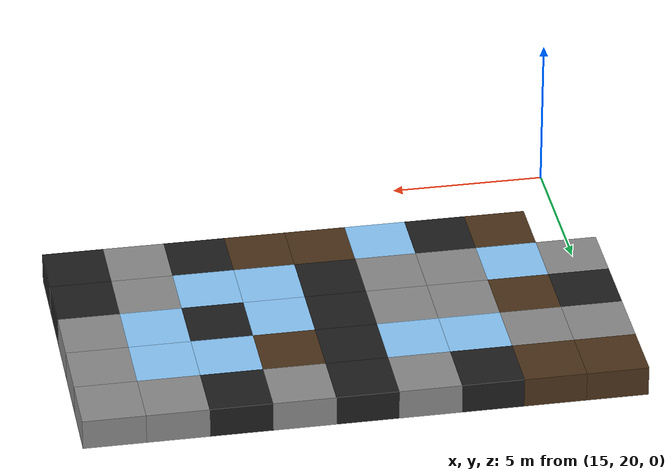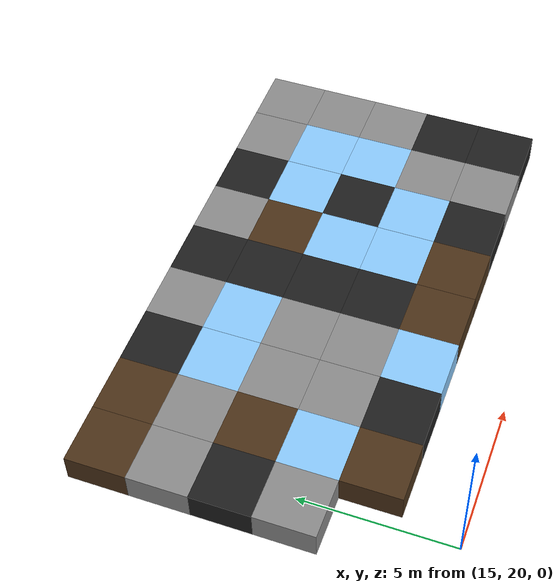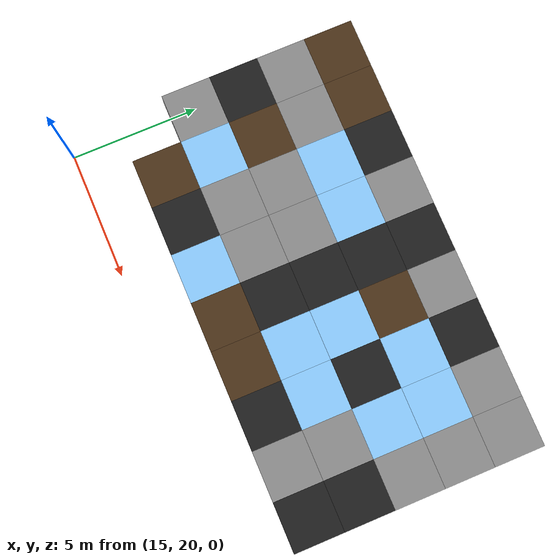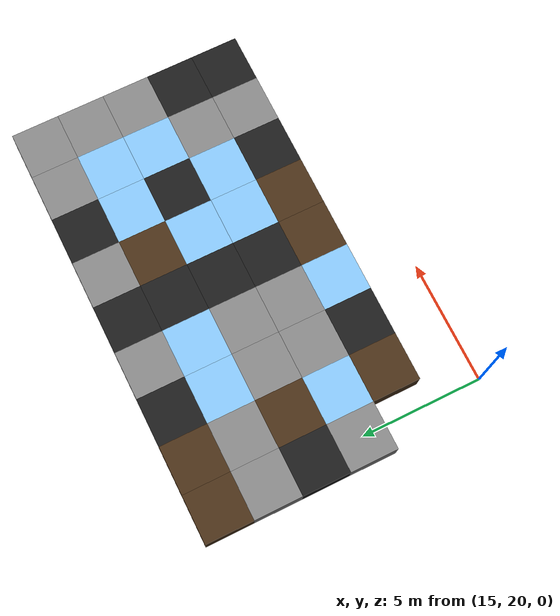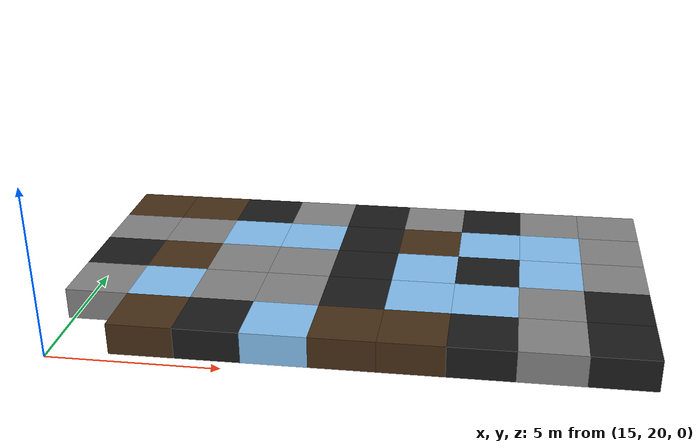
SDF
<sdf version="1.5">
 <world name="squares_example">
  <model name="tile_24_27">
   <static>true</static>
   <pose>17.000 23.000 -0.500 0 0 0</pose>
   <link name="link">
    <collision name="col">
     <geometry><box><size>2.0 2.0 1.0</size></box></geometry>
     <surface>
      <friction>
       <ode><mu>0.6</mu><mu2>0.4</mu2><fdir1>1 0 0</fdir1><slip1>0.08</slip1><slip2>0.08</slip2></ode>
       <torsional>
        <coefficient>0.03</coefficient>
        <use_patch_radius>false</use_patch_radius>
        <surface_radius>0.12</surface_radius>
        <ode><slip>0.0</slip></ode>
       </torsional>
      </friction>
      <bounce><restitution_coefficient>0.0</restitution_coefficient><threshold>0.1</threshold></bounce>
      <contact>
       <ode><kp>1000000.0</kp><kd>10000.0</kd><max_vel>0.01</max_vel><min_depth>0.0</min_depth></ode>
      </contact>
     </surface>
    </collision>
    <visual name="visual">
     <geometry><box><size>2.0 2.0 1.0</size></box></geometry>
     <material>
      <diffuse>0.30 0.20 0.10 1</diffuse>
      <ambient>0 0 0 0</ambient>
      <specular>0 0 0 1</specular>
      <emissive>0 0 0 1</emissive>
     </material>
    </visual>
   </link>
  </model>
  <model name="tile_25_27">
   <static>true</static>
   <pose>19.000 23.000 -0.500 0 0 0</pose>
   <link name="link">
    <collision name="col">
     <geometry><box><size>2.0 2.0 1.0</size></box></geometry>
     <surface>
      <friction>
       <ode><mu>0.4</mu><mu2>0.15</mu2><fdir1>1 0 0</fdir1><slip1>0.0</slip1><slip2>0.0</slip2></ode>
       <torsional>
        <coefficient>0.03</coefficient>
        <use_patch_radius>false</use_patch_radius>
        <surface_radius>0.12</surface_radius>
        <ode><slip>0.0</slip></ode>
       </torsional>
      </friction>
      <bounce><restitution_coefficient>0.0</restitution_coefficient><threshold>0.1</threshold></bounce>
      <contact>
       <ode><kp>1000000000.0</kp><kd>1000000.0</kd><max_vel>0.01</max_vel><min_depth>0.0</min_depth></ode>
      </contact>
     </surface>
    </collision>
    <visual name="visual">
     <geometry><box><size>2.0 2.0 1.0</size></box></geometry>
     <material>
      <diffuse>0.12 0.12 0.12 1</diffuse>
      <ambient>0 0 0 0</ambient>
      <specular>0 0 0 1</specular>
      <emissive>0 0 0 1</emissive>
     </material>
    </visual>
   </link>
  </model>
  <model name="tile_26_27">
   <static>true</static>
   <pose>21.000 23.000 -0.500 0 0 0</pose>
   <link name="link">
    <collision name="col">
     <geometry><box><size>2.0 2.0 1.0</size></box></geometry>
     <surface>
      <friction>
       <ode><mu>0.03</mu><mu2>0.02</mu2><fdir1>1 0 0</fdir1><slip1>0.03</slip1><slip2>0.03</slip2></ode>
       <torsional>
        <coefficient>0.005</coefficient>
        <use_patch_radius>false</use_patch_radius>
        <surface_radius>0.12</surface_radius>
        <ode><slip>0.01</slip></ode>
       </torsional>
      </friction>
      <bounce><restitution_coefficient>0.0</restitution_coefficient><threshold>0.1</threshold></bounce>
      <contact>
       <ode><kp>10000000.0</kp><kd>1000.0</kd><max_vel>0.01</max_vel><min_depth>0.0</min_depth></ode>
      </contact>
     </surface>
    </collision>
    <visual name="visual">
     <geometry><box><size>2.0 2.0 1.0</size></box></geometry>
     <material>
      <diffuse>0.55 0.80 1.00 1</diffuse>
      <ambient>0 0 0 0</ambient>
      <specular>0 0 0 1</specular>
      <emissive>0 0 0 1</emissive>
     </material>
    </visual>
   </link>
  </model>
  <model name="tile_27_27">
   <static>true</static>
   <pose>23.000 23.000 -0.500 0 0 0</pose>
   <link name="link">
    <collision name="col">
     <geometry><box><size>2.0 2.0 1.0</size></box></geometry>
     <surface>
      <friction>
       <ode><mu>0.6</mu><mu2>0.4</mu2><fdir1>1 0 0</fdir1><slip1>0.08</slip1><slip2>0.08</slip2></ode>
       <torsional>
        <coefficient>0.03</coefficient>
        <use_patch_radius>false</use_patch_radius>
        <surface_radius>0.12</surface_radius>
        <ode><slip>0.0</slip></ode>
       </torsional>
      </friction>
      <bounce><restitution_coefficient>0.0</restitution_coefficient><threshold>0.1</threshold></bounce>
      <contact>
       <ode><kp>1000000.0</kp><kd>10000.0</kd><max_vel>0.01</max_vel><min_depth>0.0</min_depth></ode>
      </contact>
     </surface>
    </collision>
    <visual name="visual">
     <geometry><box><size>2.0 2.0 1.0</size></box></geometry>
     <material>
      <diffuse>0.30 0.20 0.10 1</diffuse>
      <ambient>0 0 0 0</ambient>
      <specular>0 0 0 1</specular>
      <emissive>0 0 0 1</emissive>
     </material>
    </visual>
   </link>
  </model>
  <model name="tile_28_27">
   <static>true</static>
   <pose>25.000 23.000 -0.500 0 0 0</pose>
   <link name="link">
    <collision name="col">
     <geometry><box><size>2.0 2.0 1.0</size></box></geometry>
     <surface>
      <friction>
       <ode><mu>0.6</mu><mu2>0.4</mu2><fdir1>1 0 0</fdir1><slip1>0.08</slip1><slip2>0.08</slip2></ode>
       <torsional>
        <coefficient>0.03</coefficient>
        <use_patch_radius>false</use_patch_radius>
        <surface_radius>0.12</surface_radius>
        <ode><slip>0.0</slip></ode>
       </torsional>
      </friction>
      <bounce><restitution_coefficient>0.0</restitution_coefficient><threshold>0.1</threshold></bounce>
      <contact>
       <ode><kp>1000000.0</kp><kd>10000.0</kd><max_vel>0.01</max_vel><min_depth>0.0</min_depth></ode>
      </contact>
     </surface>
    </collision>
    <visual name="visual">
     <geometry><box><size>2.0 2.0 1.0</size></box></geometry>
     <material>
      <diffuse>0.30 0.20 0.10 1</diffuse>
      <ambient>0 0 0 0</ambient>
      <specular>0 0 0 1</specular>
      <emissive>0 0 0 1</emissive>
     </material>
    </visual>
   </link>
  </model>
  <model name="tile_29_27">
   <static>true</static>
   <pose>27.000 23.000 -0.500 0 0 0</pose>
   <link name="link">
    <collision name="col">
     <geometry><box><size>2.0 2.0 1.0</size></box></geometry>
     <surface>
      <friction>
       <ode><mu>0.4</mu><mu2>0.15</mu2><fdir1>1 0 0</fdir1><slip1>0.0</slip1><slip2>0.0</slip2></ode>
       <torsional>
        <coefficient>0.03</coefficient>
        <use_patch_radius>false</use_patch_radius>
        <surface_radius>0.12</surface_radius>
        <ode><slip>0.0</slip></ode>
       </torsional>
      </friction>
      <bounce><restitution_coefficient>0.0</restitution_coefficient><threshold>0.1</threshold></bounce>
      <contact>
       <ode><kp>1000000000.0</kp><kd>1000000.0</kd><max_vel>0.01</max_vel><min_depth>0.0</min_depth></ode>
      </contact>
     </surface>
    </collision>
    <visual name="visual">
     <geometry><box><size>2.0 2.0 1.0</size></box></geometry>
     <material>
      <diffuse>0.12 0.12 0.12 1</diffuse>
      <ambient>0 0 0 0</ambient>
      <specular>0 0 0 1</specular>
      <emissive>0 0 0 1</emissive>
     </material>
    </visual>
   </link>
  </model>
  <model name="tile_30_27">
   <static>true</static>
   <pose>29.000 23.000 -0.500 0 0 0</pose>
   <link name="link">
    <collision name="col">
     <geometry><box><size>2.0 2.0 1.0</size></box></geometry>
     <surface>
      <friction>
       <ode><mu>0.8</mu><mu2>0.3</mu2><fdir1>1 0 0</fdir1><slip1>0.0</slip1><slip2>0.0</slip2></ode>
       <torsional>
        <coefficient>0.03</coefficient>
        <use_patch_radius>false</use_patch_radius>
        <surface_radius>0.12</surface_radius>
        <ode><slip>0.0</slip></ode>
       </torsional>
      </friction>
      <bounce><restitution_coefficient>0.0</restitution_coefficient><threshold>0.1</threshold></bounce>
      <contact>
       <ode><kp>10000000000.0</kp><kd>10000000.0</kd><max_vel>0.01</max_vel><min_depth>0.0</min_depth></ode>
      </contact>
     </surface>
    </collision>
    <visual name="visual">
     <geometry><box><size>2.0 2.0 1.0</size></box></geometry>
     <material>
      <diffuse>0.55 0.55 0.55 1</diffuse>
      <ambient>0 0 0 0</ambient>
      <specular>0 0 0 1</specular>
      <emissive>0 0 0 1</emissive>
     </material>
    </visual>
   </link>
  </model>
  <model name="tile_31_27">
   <static>true</static>
   <pose>31.000 23.000 -0.500 0 0 0</pose>
   <link name="link">
    <collision name="col">
     <geometry><box><size>2.0 2.0 1.0</size></box></geometry>
     <surface>
      <friction>
       <ode><mu>0.4</mu><mu2>0.15</mu2><fdir1>1 0 0</fdir1><slip1>0.0</slip1><slip2>0.0</slip2></ode>
       <torsional>
        <coefficient>0.03</coefficient>
        <use_patch_radius>false</use_patch_radius>
        <surface_radius>0.12</surface_radius>
        <ode><slip>0.0</slip></ode>
       </torsional>
      </friction>
      <bounce><restitution_coefficient>0.0</restitution_coefficient><threshold>0.1</threshold></bounce>
      <contact>
       <ode><kp>1000000000.0</kp><kd>1000000.0</kd><max_vel>0.01</max_vel><min_depth>0.0</min_depth></ode>
      </contact>
     </surface>
    </collision>
    <visual name="visual">
     <geometry><box><size>2.0 2.0 1.0</size></box></geometry>
     <material>
      <diffuse>0.12 0.12 0.12 1</diffuse>
      <ambient>0 0 0 0</ambient>
      <specular>0 0 0 1</specular>
      <emissive>0 0 0 1</emissive>
     </material>
    </visual>
   </link>
  </model>
  <model name="tile_23_28">
   <static>true</static>
   <pose>15.000 25.000 -0.500 0 0 0</pose>
   <link name="link">
    <collision name="col">
     <geometry><box><size>2.0 2.0 1.0</size></box></geometry>
     <surface>
      <friction>
       <ode><mu>0.8</mu><mu2>0.3</mu2><fdir1>1 0 0</fdir1><slip1>0.0</slip1><slip2>0.0</slip2></ode>
       <torsional>
        <coefficient>0.03</coefficient>
        <use_patch_radius>false</use_patch_radius>
        <surface_radius>0.12</surface_radius>
        <ode><slip>0.0</slip></ode>
       </torsional>
      </friction>
      <bounce><restitution_coefficient>0.0</restitution_coefficient><threshold>0.1</threshold></bounce>
      <contact>
       <ode><kp>10000000000.0</kp><kd>10000000.0</kd><max_vel>0.01</max_vel><min_depth>0.0</min_depth></ode>
      </contact>
     </surface>
    </collision>
    <visual name="visual">
     <geometry><box><size>2.0 2.0 1.0</size></box></geometry>
     <material>
      <diffuse>0.55 0.55 0.55 1</diffuse>
      <ambient>0 0 0 0</ambient>
      <specular>0 0 0 1</specular>
      <emissive>0 0 0 1</emissive>
     </material>
    </visual>
   </link>
  </model>
  <model name="tile_24_28">
   <static>true</static>
   <pose>17.000 25.000 -0.500 0 0 0</pose>
   <link name="link">
    <collision name="col">
     <geometry><box><size>2.0 2.0 1.0</size></box></geometry>
     <surface>
      <friction>
       <ode><mu>0.03</mu><mu2>0.02</mu2><fdir1>1 0 0</fdir1><slip1>0.03</slip1><slip2>0.03</slip2></ode>
       <torsional>
        <coefficient>0.005</coefficient>
        <use_patch_radius>false</use_patch_radius>
        <surface_radius>0.12</surface_radius>
        <ode><slip>0.01</slip></ode>
       </torsional>
      </friction>
      <bounce><restitution_coefficient>0.0</restitution_coefficient><threshold>0.1</threshold></bounce>
      <contact>
       <ode><kp>10000000.0</kp><kd>1000.0</kd><max_vel>0.01</max_vel><min_depth>0.0</min_depth></ode>
      </contact>
     </surface>
    </collision>
    <visual name="visual">
     <geometry><box><size>2.0 2.0 1.0</size></box></geometry>
     <material>
      <diffuse>0.55 0.80 1.00 1</diffuse>
      <ambient>0 0 0 0</ambient>
      <specular>0 0 0 1</specular>
      <emissive>0 0 0 1</emissive>
     </material>
    </visual>
   </link>
  </model>
  <model name="tile_25_28">
   <static>true</static>
   <pose>19.000 25.000 -0.500 0 0 0</pose>
   <link name="link">
    <collision name="col">
     <geometry><box><size>2.0 2.0 1.0</size></box></geometry>
     <surface>
      <friction>
       <ode><mu>0.8</mu><mu2>0.3</mu2><fdir1>1 0 0</fdir1><slip1>0.0</slip1><slip2>0.0</slip2></ode>
       <torsional>
        <coefficient>0.03</coefficient>
        <use_patch_radius>false</use_patch_radius>
        <surface_radius>0.12</surface_radius>
        <ode><slip>0.0</slip></ode>
       </torsional>
      </friction>
      <bounce><restitution_coefficient>0.0</restitution_coefficient><threshold>0.1</threshold></bounce>
      <contact>
       <ode><kp>10000000000.0</kp><kd>10000000.0</kd><max_vel>0.01</max_vel><min_depth>0.0</min_depth></ode>
      </contact>
     </surface>
    </collision>
    <visual name="visual">
     <geometry><box><size>2.0 2.0 1.0</size></box></geometry>
     <material>
      <diffuse>0.55 0.55 0.55 1</diffuse>
      <ambient>0 0 0 0</ambient>
      <specular>0 0 0 1</specular>
      <emissive>0 0 0 1</emissive>
     </material>
    </visual>
   </link>
  </model>
  <model name="tile_26_28">
   <static>true</static>
   <pose>21.000 25.000 -0.500 0 0 0</pose>
   <link name="link">
    <collision name="col">
     <geometry><box><size>2.0 2.0 1.0</size></box></geometry>
     <surface>
      <friction>
       <ode><mu>0.8</mu><mu2>0.3</mu2><fdir1>1 0 0</fdir1><slip1>0.0</slip1><slip2>0.0</slip2></ode>
       <torsional>
        <coefficient>0.03</coefficient>
        <use_patch_radius>false</use_patch_radius>
        <surface_radius>0.12</surface_radius>
        <ode><slip>0.0</slip></ode>
       </torsional>
      </friction>
      <bounce><restitution_coefficient>0.0</restitution_coefficient><threshold>0.1</threshold></bounce>
      <contact>
       <ode><kp>10000000000.0</kp><kd>10000000.0</kd><max_vel>0.01</max_vel><min_depth>0.0</min_depth></ode>
      </contact>
     </surface>
    </collision>
    <visual name="visual">
     <geometry><box><size>2.0 2.0 1.0</size></box></geometry>
     <material>
      <diffuse>0.55 0.55 0.55 1</diffuse>
      <ambient>0 0 0 0</ambient>
      <specular>0 0 0 1</specular>
      <emissive>0 0 0 1</emissive>
     </material>
    </visual>
   </link>
  </model>
  <model name="tile_27_28">
   <static>true</static>
   <pose>23.000 25.000 -0.500 0 0 0</pose>
   <link name="link">
    <collision name="col">
     <geometry><box><size>2.0 2.0 1.0</size></box></geometry>
     <surface>
      <friction>
       <ode><mu>0.4</mu><mu2>0.15</mu2><fdir1>1 0 0</fdir1><slip1>0.0</slip1><slip2>0.0</slip2></ode>
       <torsional>
        <coefficient>0.03</coefficient>
        <use_patch_radius>false</use_patch_radius>
        <surface_radius>0.12</surface_radius>
        <ode><slip>0.0</slip></ode>
       </torsional>
      </friction>
      <bounce><restitution_coefficient>0.0</restitution_coefficient><threshold>0.1</threshold></bounce>
      <contact>
       <ode><kp>1000000000.0</kp><kd>1000000.0</kd><max_vel>0.01</max_vel><min_depth>0.0</min_depth></ode>
      </contact>
     </surface>
    </collision>
    <visual name="visual">
     <geometry><box><size>2.0 2.0 1.0</size></box></geometry>
     <material>
      <diffuse>0.12 0.12 0.12 1</diffuse>
      <ambient>0 0 0 0</ambient>
      <specular>0 0 0 1</specular>
      <emissive>0 0 0 1</emissive>
     </material>
    </visual>
   </link>
  </model>
  <model name="tile_28_28">
   <static>true</static>
   <pose>25.000 25.000 -0.500 0 0 0</pose>
   <link name="link">
    <collision name="col">
     <geometry><box><size>2.0 2.0 1.0</size></box></geometry>
     <surface>
      <friction>
       <ode><mu>0.03</mu><mu2>0.02</mu2><fdir1>1 0 0</fdir1><slip1>0.03</slip1><slip2>0.03</slip2></ode>
       <torsional>
        <coefficient>0.005</coefficient>
        <use_patch_radius>false</use_patch_radius>
        <surface_radius>0.12</surface_radius>
        <ode><slip>0.01</slip></ode>
       </torsional>
      </friction>
      <bounce><restitution_coefficient>0.0</restitution_coefficient><threshold>0.1</threshold></bounce>
      <contact>
       <ode><kp>10000000.0</kp><kd>1000.0</kd><max_vel>0.01</max_vel><min_depth>0.0</min_depth></ode>
      </contact>
     </surface>
    </collision>
    <visual name="visual">
     <geometry><box><size>2.0 2.0 1.0</size></box></geometry>
     <material>
      <diffuse>0.55 0.80 1.00 1</diffuse>
      <ambient>0 0 0 0</ambient>
      <specular>0 0 0 1</specular>
      <emissive>0 0 0 1</emissive>
     </material>
    </visual>
   </link>
  </model>
  <model name="tile_29_28">
   <static>true</static>
   <pose>27.000 25.000 -0.500 0 0 0</pose>
   <link name="link">
    <collision name="col">
     <geometry><box><size>2.0 2.0 1.0</size></box></geometry>
     <surface>
      <friction>
       <ode><mu>0.03</mu><mu2>0.02</mu2><fdir1>1 0 0</fdir1><slip1>0.03</slip1><slip2>0.03</slip2></ode>
       <torsional>
        <coefficient>0.005</coefficient>
        <use_patch_radius>false</use_patch_radius>
        <surface_radius>0.12</surface_radius>
        <ode><slip>0.01</slip></ode>
       </torsional>
      </friction>
      <bounce><restitution_coefficient>0.0</restitution_coefficient><threshold>0.1</threshold></bounce>
      <contact>
       <ode><kp>10000000.0</kp><kd>1000.0</kd><max_vel>0.01</max_vel><min_depth>0.0</min_depth></ode>
      </contact>
     </surface>
    </collision>
    <visual name="visual">
     <geometry><box><size>2.0 2.0 1.0</size></box></geometry>
     <material>
      <diffuse>0.55 0.80 1.00 1</diffuse>
      <ambient>0 0 0 0</ambient>
      <specular>0 0 0 1</specular>
      <emissive>0 0 0 1</emissive>
     </material>
    </visual>
   </link>
  </model>
  <model name="tile_30_28">
   <static>true</static>
   <pose>29.000 25.000 -0.500 0 0 0</pose>
   <link name="link">
    <collision name="col">
     <geometry><box><size>2.0 2.0 1.0</size></box></geometry>
     <surface>
      <friction>
       <ode><mu>0.8</mu><mu2>0.3</mu2><fdir1>1 0 0</fdir1><slip1>0.0</slip1><slip2>0.0</slip2></ode>
       <torsional>
        <coefficient>0.03</coefficient>
        <use_patch_radius>false</use_patch_radius>
        <surface_radius>0.12</surface_radius>
        <ode><slip>0.0</slip></ode>
       </torsional>
      </friction>
      <bounce><restitution_coefficient>0.0</restitution_coefficient><threshold>0.1</threshold></bounce>
      <contact>
       <ode><kp>10000000000.0</kp><kd>10000000.0</kd><max_vel>0.01</max_vel><min_depth>0.0</min_depth></ode>
      </contact>
     </surface>
    </collision>
    <visual name="visual">
     <geometry><box><size>2.0 2.0 1.0</size></box></geometry>
     <material>
      <diffuse>0.55 0.55 0.55 1</diffuse>
      <ambient>0 0 0 0</ambient>
      <specular>0 0 0 1</specular>
      <emissive>0 0 0 1</emissive>
     </material>
    </visual>
   </link>
  </model>
  <model name="tile_31_28">
   <static>true</static>
   <pose>31.000 25.000 -0.500 0 0 0</pose>
   <link name="link">
    <collision name="col">
     <geometry><box><size>2.0 2.0 1.0</size></box></geometry>
     <surface>
      <friction>
       <ode><mu>0.4</mu><mu2>0.15</mu2><fdir1>1 0 0</fdir1><slip1>0.0</slip1><slip2>0.0</slip2></ode>
       <torsional>
        <coefficient>0.03</coefficient>
        <use_patch_radius>false</use_patch_radius>
        <surface_radius>0.12</surface_radius>
        <ode><slip>0.0</slip></ode>
       </torsional>
      </friction>
      <bounce><restitution_coefficient>0.0</restitution_coefficient><threshold>0.1</threshold></bounce>
      <contact>
       <ode><kp>1000000000.0</kp><kd>1000000.0</kd><max_vel>0.01</max_vel><min_depth>0.0</min_depth></ode>
      </contact>
     </surface>
    </collision>
    <visual name="visual">
     <geometry><box><size>2.0 2.0 1.0</size></box></geometry>
     <material>
      <diffuse>0.12 0.12 0.12 1</diffuse>
      <ambient>0 0 0 0</ambient>
      <specular>0 0 0 1</specular>
      <emissive>0 0 0 1</emissive>
     </material>
    </visual>
   </link>
  </model>
  <model name="tile_23_29">
   <static>true</static>
   <pose>15.000 27.000 -0.500 0 0 0</pose>
   <link name="link">
    <collision name="col">
     <geometry><box><size>2.0 2.0 1.0</size></box></geometry>
     <surface>
      <friction>
       <ode><mu>0.4</mu><mu2>0.15</mu2><fdir1>1 0 0</fdir1><slip1>0.0</slip1><slip2>0.0</slip2></ode>
       <torsional>
        <coefficient>0.03</coefficient>
        <use_patch_radius>false</use_patch_radius>
        <surface_radius>0.12</surface_radius>
        <ode><slip>0.0</slip></ode>
       </torsional>
      </friction>
      <bounce><restitution_coefficient>0.0</restitution_coefficient><threshold>0.1</threshold></bounce>
      <contact>
       <ode><kp>1000000000.0</kp><kd>1000000.0</kd><max_vel>0.01</max_vel><min_depth>0.0</min_depth></ode>
      </contact>
     </surface>
    </collision>
    <visual name="visual">
     <geometry><box><size>2.0 2.0 1.0</size></box></geometry>
     <material>
      <diffuse>0.12 0.12 0.12 1</diffuse>
      <ambient>0 0 0 0</ambient>
      <specular>0 0 0 1</specular>
      <emissive>0 0 0 1</emissive>
     </material>
    </visual>
   </link>
  </model>
  <model name="tile_24_29">
   <static>true</static>
   <pose>17.000 27.000 -0.500 0 0 0</pose>
   <link name="link">
    <collision name="col">
     <geometry><box><size>2.0 2.0 1.0</size></box></geometry>
     <surface>
      <friction>
       <ode><mu>0.6</mu><mu2>0.4</mu2><fdir1>1 0 0</fdir1><slip1>0.08</slip1><slip2>0.08</slip2></ode>
       <torsional>
        <coefficient>0.03</coefficient>
        <use_patch_radius>false</use_patch_radius>
        <surface_radius>0.12</surface_radius>
        <ode><slip>0.0</slip></ode>
       </torsional>
      </friction>
      <bounce><restitution_coefficient>0.0</restitution_coefficient><threshold>0.1</threshold></bounce>
      <contact>
       <ode><kp>1000000.0</kp><kd>10000.0</kd><max_vel>0.01</max_vel><min_depth>0.0</min_depth></ode>
      </contact>
     </surface>
    </collision>
    <visual name="visual">
     <geometry><box><size>2.0 2.0 1.0</size></box></geometry>
     <material>
      <diffuse>0.30 0.20 0.10 1</diffuse>
      <ambient>0 0 0 0</ambient>
      <specular>0 0 0 1</specular>
      <emissive>0 0 0 1</emissive>
     </material>
    </visual>
   </link>
  </model>
  <model name="tile_25_29">
   <static>true</static>
   <pose>19.000 27.000 -0.500 0 0 0</pose>
   <link name="link">
    <collision name="col">
     <geometry><box><size>2.0 2.0 1.0</size></box></geometry>
     <surface>
      <friction>
       <ode><mu>0.8</mu><mu2>0.3</mu2><fdir1>1 0 0</fdir1><slip1>0.0</slip1><slip2>0.0</slip2></ode>
       <torsional>
        <coefficient>0.03</coefficient>
        <use_patch_radius>false</use_patch_radius>
        <surface_radius>0.12</surface_radius>
        <ode><slip>0.0</slip></ode>
       </torsional>
      </friction>
      <bounce><restitution_coefficient>0.0</restitution_coefficient><threshold>0.1</threshold></bounce>
      <contact>
       <ode><kp>10000000000.0</kp><kd>10000000.0</kd><max_vel>0.01</max_vel><min_depth>0.0</min_depth></ode>
      </contact>
     </surface>
    </collision>
    <visual name="visual">
     <geometry><box><size>2.0 2.0 1.0</size></box></geometry>
     <material>
      <diffuse>0.55 0.55 0.55 1</diffuse>
      <ambient>0 0 0 0</ambient>
      <specular>0 0 0 1</specular>
      <emissive>0 0 0 1</emissive>
     </material>
    </visual>
   </link>
  </model>
  <model name="tile_26_29">
   <static>true</static>
   <pose>21.000 27.000 -0.500 0 0 0</pose>
   <link name="link">
    <collision name="col">
     <geometry><box><size>2.0 2.0 1.0</size></box></geometry>
     <surface>
      <friction>
       <ode><mu>0.8</mu><mu2>0.3</mu2><fdir1>1 0 0</fdir1><slip1>0.0</slip1><slip2>0.0</slip2></ode>
       <torsional>
        <coefficient>0.03</coefficient>
        <use_patch_radius>false</use_patch_radius>
        <surface_radius>0.12</surface_radius>
        <ode><slip>0.0</slip></ode>
       </torsional>
      </friction>
      <bounce><restitution_coefficient>0.0</restitution_coefficient><threshold>0.1</threshold></bounce>
      <contact>
       <ode><kp>10000000000.0</kp><kd>10000000.0</kd><max_vel>0.01</max_vel><min_depth>0.0</min_depth></ode>
      </contact>
     </surface>
    </collision>
    <visual name="visual">
     <geometry><box><size>2.0 2.0 1.0</size></box></geometry>
     <material>
      <diffuse>0.55 0.55 0.55 1</diffuse>
      <ambient>0 0 0 0</ambient>
      <specular>0 0 0 1</specular>
      <emissive>0 0 0 1</emissive>
     </material>
    </visual>
   </link>
  </model>
  <model name="tile_27_29">
   <static>true</static>
   <pose>23.000 27.000 -0.500 0 0 0</pose>
   <link name="link">
    <collision name="col">
     <geometry><box><size>2.0 2.0 1.0</size></box></geometry>
     <surface>
      <friction>
       <ode><mu>0.4</mu><mu2>0.15</mu2><fdir1>1 0 0</fdir1><slip1>0.0</slip1><slip2>0.0</slip2></ode>
       <torsional>
        <coefficient>0.03</coefficient>
        <use_patch_radius>false</use_patch_radius>
        <surface_radius>0.12</surface_radius>
        <ode><slip>0.0</slip></ode>
       </torsional>
      </friction>
      <bounce><restitution_coefficient>0.0</restitution_coefficient><threshold>0.1</threshold></bounce>
      <contact>
       <ode><kp>1000000000.0</kp><kd>1000000.0</kd><max_vel>0.01</max_vel><min_depth>0.0</min_depth></ode>
      </contact>
     </surface>
    </collision>
    <visual name="visual">
     <geometry><box><size>2.0 2.0 1.0</size></box></geometry>
     <material>
      <diffuse>0.12 0.12 0.12 1</diffuse>
      <ambient>0 0 0 0</ambient>
      <specular>0 0 0 1</specular>
      <emissive>0 0 0 1</emissive>
     </material>
    </visual>
   </link>
  </model>
  <model name="tile_28_29">
   <static>true</static>
   <pose>25.000 27.000 -0.500 0 0 0</pose>
   <link name="link">
    <collision name="col">
     <geometry><box><size>2.0 2.0 1.0</size></box></geometry>
     <surface>
      <friction>
       <ode><mu>0.03</mu><mu2>0.02</mu2><fdir1>1 0 0</fdir1><slip1>0.03</slip1><slip2>0.03</slip2></ode>
       <torsional>
        <coefficient>0.005</coefficient>
        <use_patch_radius>false</use_patch_radius>
        <surface_radius>0.12</surface_radius>
        <ode><slip>0.01</slip></ode>
       </torsional>
      </friction>
      <bounce><restitution_coefficient>0.0</restitution_coefficient><threshold>0.1</threshold></bounce>
      <contact>
       <ode><kp>10000000.0</kp><kd>1000.0</kd><max_vel>0.01</max_vel><min_depth>0.0</min_depth></ode>
      </contact>
     </surface>
    </collision>
    <visual name="visual">
     <geometry><box><size>2.0 2.0 1.0</size></box></geometry>
     <material>
      <diffuse>0.55 0.80 1.00 1</diffuse>
      <ambient>0 0 0 0</ambient>
      <specular>0 0 0 1</specular>
      <emissive>0 0 0 1</emissive>
     </material>
    </visual>
   </link>
  </model>
  <model name="tile_29_29">
   <static>true</static>
   <pose>27.000 27.000 -0.500 0 0 0</pose>
   <link name="link">
    <collision name="col">
     <geometry><box><size>2.0 2.0 1.0</size></box></geometry>
     <surface>
      <friction>
       <ode><mu>0.4</mu><mu2>0.15</mu2><fdir1>1 0 0</fdir1><slip1>0.0</slip1><slip2>0.0</slip2></ode>
       <torsional>
        <coefficient>0.03</coefficient>
        <use_patch_radius>false</use_patch_radius>
        <surface_radius>0.12</surface_radius>
        <ode><slip>0.0</slip></ode>
       </torsional>
      </friction>
      <bounce><restitution_coefficient>0.0</restitution_coefficient><threshold>0.1</threshold></bounce>
      <contact>
       <ode><kp>1000000000.0</kp><kd>1000000.0</kd><max_vel>0.01</max_vel><min_depth>0.0</min_depth></ode>
      </contact>
     </surface>
    </collision>
    <visual name="visual">
     <geometry><box><size>2.0 2.0 1.0</size></box></geometry>
     <material>
      <diffuse>0.12 0.12 0.12 1</diffuse>
      <ambient>0 0 0 0</ambient>
      <specular>0 0 0 1</specular>
      <emissive>0 0 0 1</emissive>
     </material>
    </visual>
   </link>
  </model>
  <model name="tile_30_29">
   <static>true</static>
   <pose>29.000 27.000 -0.500 0 0 0</pose>
   <link name="link">
    <collision name="col">
     <geometry><box><size>2.0 2.0 1.0</size></box></geometry>
     <surface>
      <friction>
       <ode><mu>0.03</mu><mu2>0.02</mu2><fdir1>1 0 0</fdir1><slip1>0.03</slip1><slip2>0.03</slip2></ode>
       <torsional>
        <coefficient>0.005</coefficient>
        <use_patch_radius>false</use_patch_radius>
        <surface_radius>0.12</surface_radius>
        <ode><slip>0.01</slip></ode>
       </torsional>
      </friction>
      <bounce><restitution_coefficient>0.0</restitution_coefficient><threshold>0.1</threshold></bounce>
      <contact>
       <ode><kp>10000000.0</kp><kd>1000.0</kd><max_vel>0.01</max_vel><min_depth>0.0</min_depth></ode>
      </contact>
     </surface>
    </collision>
    <visual name="visual">
     <geometry><box><size>2.0 2.0 1.0</size></box></geometry>
     <material>
      <diffuse>0.55 0.80 1.00 1</diffuse>
      <ambient>0 0 0 0</ambient>
      <specular>0 0 0 1</specular>
      <emissive>0 0 0 1</emissive>
     </material>
    </visual>
   </link>
  </model>
  <model name="tile_31_29">
   <static>true</static>
   <pose>31.000 27.000 -0.500 0 0 0</pose>
   <link name="link">
    <collision name="col">
     <geometry><box><size>2.0 2.0 1.0</size></box></geometry>
     <surface>
      <friction>
       <ode><mu>0.8</mu><mu2>0.3</mu2><fdir1>1 0 0</fdir1><slip1>0.0</slip1><slip2>0.0</slip2></ode>
       <torsional>
        <coefficient>0.03</coefficient>
        <use_patch_radius>false</use_patch_radius>
        <surface_radius>0.12</surface_radius>
        <ode><slip>0.0</slip></ode>
       </torsional>
      </friction>
      <bounce><restitution_coefficient>0.0</restitution_coefficient><threshold>0.1</threshold></bounce>
      <contact>
       <ode><kp>10000000000.0</kp><kd>10000000.0</kd><max_vel>0.01</max_vel><min_depth>0.0</min_depth></ode>
      </contact>
     </surface>
    </collision>
    <visual name="visual">
     <geometry><box><size>2.0 2.0 1.0</size></box></geometry>
     <material>
      <diffuse>0.55 0.55 0.55 1</diffuse>
      <ambient>0 0 0 0</ambient>
      <specular>0 0 0 1</specular>
      <emissive>0 0 0 1</emissive>
     </material>
    </visual>
   </link>
  </model>
  <model name="tile_23_30">
   <static>true</static>
   <pose>15.000 29.000 -0.500 0 0 0</pose>
   <link name="link">
    <collision name="col">
     <geometry><box><size>2.0 2.0 1.0</size></box></geometry>
     <surface>
      <friction>
       <ode><mu>0.8</mu><mu2>0.3</mu2><fdir1>1 0 0</fdir1><slip1>0.0</slip1><slip2>0.0</slip2></ode>
       <torsional>
        <coefficient>0.03</coefficient>
        <use_patch_radius>false</use_patch_radius>
        <surface_radius>0.12</surface_radius>
        <ode><slip>0.0</slip></ode>
       </torsional>
      </friction>
      <bounce><restitution_coefficient>0.0</restitution_coefficient><threshold>0.1</threshold></bounce>
      <contact>
       <ode><kp>10000000000.0</kp><kd>10000000.0</kd><max_vel>0.01</max_vel><min_depth>0.0</min_depth></ode>
      </contact>
     </surface>
    </collision>
    <visual name="visual">
     <geometry><box><size>2.0 2.0 1.0</size></box></geometry>
     <material>
      <diffuse>0.55 0.55 0.55 1</diffuse>
      <ambient>0 0 0 0</ambient>
      <specular>0 0 0 1</specular>
      <emissive>0 0 0 1</emissive>
     </material>
    </visual>
   </link>
  </model>
  <model name="tile_24_30">
   <static>true</static>
   <pose>17.000 29.000 -0.500 0 0 0</pose>
   <link name="link">
    <collision name="col">
     <geometry><box><size>2.0 2.0 1.0</size></box></geometry>
     <surface>
      <friction>
       <ode><mu>0.8</mu><mu2>0.3</mu2><fdir1>1 0 0</fdir1><slip1>0.0</slip1><slip2>0.0</slip2></ode>
       <torsional>
        <coefficient>0.03</coefficient>
        <use_patch_radius>false</use_patch_radius>
        <surface_radius>0.12</surface_radius>
        <ode><slip>0.0</slip></ode>
       </torsional>
      </friction>
      <bounce><restitution_coefficient>0.0</restitution_coefficient><threshold>0.1</threshold></bounce>
      <contact>
       <ode><kp>10000000000.0</kp><kd>10000000.0</kd><max_vel>0.01</max_vel><min_depth>0.0</min_depth></ode>
      </contact>
     </surface>
    </collision>
    <visual name="visual">
     <geometry><box><size>2.0 2.0 1.0</size></box></geometry>
     <material>
      <diffuse>0.55 0.55 0.55 1</diffuse>
      <ambient>0 0 0 0</ambient>
      <specular>0 0 0 1</specular>
      <emissive>0 0 0 1</emissive>
     </material>
    </visual>
   </link>
  </model>
  <model name="tile_25_30">
   <static>true</static>
   <pose>19.000 29.000 -0.500 0 0 0</pose>
   <link name="link">
    <collision name="col">
     <geometry><box><size>2.0 2.0 1.0</size></box></geometry>
     <surface>
      <friction>
       <ode><mu>0.03</mu><mu2>0.02</mu2><fdir1>1 0 0</fdir1><slip1>0.03</slip1><slip2>0.03</slip2></ode>
       <torsional>
        <coefficient>0.005</coefficient>
        <use_patch_radius>false</use_patch_radius>
        <surface_radius>0.12</surface_radius>
        <ode><slip>0.01</slip></ode>
       </torsional>
      </friction>
      <bounce><restitution_coefficient>0.0</restitution_coefficient><threshold>0.1</threshold></bounce>
      <contact>
       <ode><kp>10000000.0</kp><kd>1000.0</kd><max_vel>0.01</max_vel><min_depth>0.0</min_depth></ode>
      </contact>
     </surface>
    </collision>
    <visual name="visual">
     <geometry><box><size>2.0 2.0 1.0</size></box></geometry>
     <material>
      <diffuse>0.55 0.80 1.00 1</diffuse>
      <ambient>0 0 0 0</ambient>
      <specular>0 0 0 1</specular>
      <emissive>0 0 0 1</emissive>
     </material>
    </visual>
   </link>
  </model>
  <model name="tile_26_30">
   <static>true</static>
   <pose>21.000 29.000 -0.500 0 0 0</pose>
   <link name="link">
    <collision name="col">
     <geometry><box><size>2.0 2.0 1.0</size></box></geometry>
     <surface>
      <friction>
       <ode><mu>0.03</mu><mu2>0.02</mu2><fdir1>1 0 0</fdir1><slip1>0.03</slip1><slip2>0.03</slip2></ode>
       <torsional>
        <coefficient>0.005</coefficient>
        <use_patch_radius>false</use_patch_radius>
        <surface_radius>0.12</surface_radius>
        <ode><slip>0.01</slip></ode>
       </torsional>
      </friction>
      <bounce><restitution_coefficient>0.0</restitution_coefficient><threshold>0.1</threshold></bounce>
      <contact>
       <ode><kp>10000000.0</kp><kd>1000.0</kd><max_vel>0.01</max_vel><min_depth>0.0</min_depth></ode>
      </contact>
     </surface>
    </collision>
    <visual name="visual">
     <geometry><box><size>2.0 2.0 1.0</size></box></geometry>
     <material>
      <diffuse>0.55 0.80 1.00 1</diffuse>
      <ambient>0 0 0 0</ambient>
      <specular>0 0 0 1</specular>
      <emissive>0 0 0 1</emissive>
     </material>
    </visual>
   </link>
  </model>
  <model name="tile_27_30">
   <static>true</static>
   <pose>23.000 29.000 -0.500 0 0 0</pose>
   <link name="link">
    <collision name="col">
     <geometry><box><size>2.0 2.0 1.0</size></box></geometry>
     <surface>
      <friction>
       <ode><mu>0.4</mu><mu2>0.15</mu2><fdir1>1 0 0</fdir1><slip1>0.0</slip1><slip2>0.0</slip2></ode>
       <torsional>
        <coefficient>0.03</coefficient>
        <use_patch_radius>false</use_patch_radius>
        <surface_radius>0.12</surface_radius>
        <ode><slip>0.0</slip></ode>
       </torsional>
      </friction>
      <bounce><restitution_coefficient>0.0</restitution_coefficient><threshold>0.1</threshold></bounce>
      <contact>
       <ode><kp>1000000000.0</kp><kd>1000000.0</kd><max_vel>0.01</max_vel><min_depth>0.0</min_depth></ode>
      </contact>
     </surface>
    </collision>
    <visual name="visual">
     <geometry><box><size>2.0 2.0 1.0</size></box></geometry>
     <material>
      <diffuse>0.12 0.12 0.12 1</diffuse>
      <ambient>0 0 0 0</ambient>
      <specular>0 0 0 1</specular>
      <emissive>0 0 0 1</emissive>
     </material>
    </visual>
   </link>
  </model>
  <model name="tile_28_30">
   <static>true</static>
   <pose>25.000 29.000 -0.500 0 0 0</pose>
   <link name="link">
    <collision name="col">
     <geometry><box><size>2.0 2.0 1.0</size></box></geometry>
     <surface>
      <friction>
       <ode><mu>0.6</mu><mu2>0.4</mu2><fdir1>1 0 0</fdir1><slip1>0.08</slip1><slip2>0.08</slip2></ode>
       <torsional>
        <coefficient>0.03</coefficient>
        <use_patch_radius>false</use_patch_radius>
        <surface_radius>0.12</surface_radius>
        <ode><slip>0.0</slip></ode>
       </torsional>
      </friction>
      <bounce><restitution_coefficient>0.0</restitution_coefficient><threshold>0.1</threshold></bounce>
      <contact>
       <ode><kp>1000000.0</kp><kd>10000.0</kd><max_vel>0.01</max_vel><min_depth>0.0</min_depth></ode>
      </contact>
     </surface>
    </collision>
    <visual name="visual">
     <geometry><box><size>2.0 2.0 1.0</size></box></geometry>
     <material>
      <diffuse>0.30 0.20 0.10 1</diffuse>
      <ambient>0 0 0 0</ambient>
      <specular>0 0 0 1</specular>
      <emissive>0 0 0 1</emissive>
     </material>
    </visual>
   </link>
  </model>
  <model name="tile_29_30">
   <static>true</static>
   <pose>27.000 29.000 -0.500 0 0 0</pose>
   <link name="link">
    <collision name="col">
     <geometry><box><size>2.0 2.0 1.0</size></box></geometry>
     <surface>
      <friction>
       <ode><mu>0.03</mu><mu2>0.02</mu2><fdir1>1 0 0</fdir1><slip1>0.03</slip1><slip2>0.03</slip2></ode>
       <torsional>
        <coefficient>0.005</coefficient>
        <use_patch_radius>false</use_patch_radius>
        <surface_radius>0.12</surface_radius>
        <ode><slip>0.01</slip></ode>
       </torsional>
      </friction>
      <bounce><restitution_coefficient>0.0</restitution_coefficient><threshold>0.1</threshold></bounce>
      <contact>
       <ode><kp>10000000.0</kp><kd>1000.0</kd><max_vel>0.01</max_vel><min_depth>0.0</min_depth></ode>
      </contact>
     </surface>
    </collision>
    <visual name="visual">
     <geometry><box><size>2.0 2.0 1.0</size></box></geometry>
     <material>
      <diffuse>0.55 0.80 1.00 1</diffuse>
      <ambient>0 0 0 0</ambient>
      <specular>0 0 0 1</specular>
      <emissive>0 0 0 1</emissive>
     </material>
    </visual>
   </link>
  </model>
  <model name="tile_30_30">
   <static>true</static>
   <pose>29.000 29.000 -0.500 0 0 0</pose>
   <link name="link">
    <collision name="col">
     <geometry><box><size>2.0 2.0 1.0</size></box></geometry>
     <surface>
      <friction>
       <ode><mu>0.03</mu><mu2>0.02</mu2><fdir1>1 0 0</fdir1><slip1>0.03</slip1><slip2>0.03</slip2></ode>
       <torsional>
        <coefficient>0.005</coefficient>
        <use_patch_radius>false</use_patch_radius>
        <surface_radius>0.12</surface_radius>
        <ode><slip>0.01</slip></ode>
       </torsional>
      </friction>
      <bounce><restitution_coefficient>0.0</restitution_coefficient><threshold>0.1</threshold></bounce>
      <contact>
       <ode><kp>10000000.0</kp><kd>1000.0</kd><max_vel>0.01</max_vel><min_depth>0.0</min_depth></ode>
      </contact>
     </surface>
    </collision>
    <visual name="visual">
     <geometry><box><size>2.0 2.0 1.0</size></box></geometry>
     <material>
      <diffuse>0.55 0.80 1.00 1</diffuse>
      <ambient>0 0 0 0</ambient>
      <specular>0 0 0 1</specular>
      <emissive>0 0 0 1</emissive>
     </material>
    </visual>
   </link>
  </model>
  <model name="tile_31_30">
   <static>true</static>
   <pose>31.000 29.000 -0.500 0 0 0</pose>
   <link name="link">
    <collision name="col">
     <geometry><box><size>2.0 2.0 1.0</size></box></geometry>
     <surface>
      <friction>
       <ode><mu>0.8</mu><mu2>0.3</mu2><fdir1>1 0 0</fdir1><slip1>0.0</slip1><slip2>0.0</slip2></ode>
       <torsional>
        <coefficient>0.03</coefficient>
        <use_patch_radius>false</use_patch_radius>
        <surface_radius>0.12</surface_radius>
        <ode><slip>0.0</slip></ode>
       </torsional>
      </friction>
      <bounce><restitution_coefficient>0.0</restitution_coefficient><threshold>0.1</threshold></bounce>
      <contact>
       <ode><kp>10000000000.0</kp><kd>10000000.0</kd><max_vel>0.01</max_vel><min_depth>0.0</min_depth></ode>
      </contact>
     </surface>
    </collision>
    <visual name="visual">
     <geometry><box><size>2.0 2.0 1.0</size></box></geometry>
     <material>
      <diffuse>0.55 0.55 0.55 1</diffuse>
      <ambient>0 0 0 0</ambient>
      <specular>0 0 0 1</specular>
      <emissive>0 0 0 1</emissive>
     </material>
    </visual>
   </link>
  </model>
  <model name="tile_23_31">
   <static>true</static>
   <pose>15.000 31.000 -0.500 0 0 0</pose>
   <link name="link">
    <collision name="col">
     <geometry><box><size>2.0 2.0 1.0</size></box></geometry>
     <surface>
      <friction>
       <ode><mu>0.6</mu><mu2>0.4</mu2><fdir1>1 0 0</fdir1><slip1>0.08</slip1><slip2>0.08</slip2></ode>
       <torsional>
        <coefficient>0.03</coefficient>
        <use_patch_radius>false</use_patch_radius>
        <surface_radius>0.12</surface_radius>
        <ode><slip>0.0</slip></ode>
       </torsional>
      </friction>
      <bounce><restitution_coefficient>0.0</restitution_coefficient><threshold>0.1</threshold></bounce>
      <contact>
       <ode><kp>1000000.0</kp><kd>10000.0</kd><max_vel>0.01</max_vel><min_depth>0.0</min_depth></ode>
      </contact>
     </surface>
    </collision>
    <visual name="visual">
     <geometry><box><size>2.0 2.0 1.0</size></box></geometry>
     <material>
      <diffuse>0.30 0.20 0.10 1</diffuse>
      <ambient>0 0 0 0</ambient>
      <specular>0 0 0 1</specular>
      <emissive>0 0 0 1</emissive>
     </material>
    </visual>
   </link>
  </model>
  <model name="tile_24_31">
   <static>true</static>
   <pose>17.000 31.000 -0.500 0 0 0</pose>
   <link name="link">
    <collision name="col">
     <geometry><box><size>2.0 2.0 1.0</size></box></geometry>
     <surface>
      <friction>
       <ode><mu>0.6</mu><mu2>0.4</mu2><fdir1>1 0 0</fdir1><slip1>0.08</slip1><slip2>0.08</slip2></ode>
       <torsional>
        <coefficient>0.03</coefficient>
        <use_patch_radius>false</use_patch_radius>
        <surface_radius>0.12</surface_radius>
        <ode><slip>0.0</slip></ode>
       </torsional>
      </friction>
      <bounce><restitution_coefficient>0.0</restitution_coefficient><threshold>0.1</threshold></bounce>
      <contact>
       <ode><kp>1000000.0</kp><kd>10000.0</kd><max_vel>0.01</max_vel><min_depth>0.0</min_depth></ode>
      </contact>
     </surface>
    </collision>
    <visual name="visual">
     <geometry><box><size>2.0 2.0 1.0</size></box></geometry>
     <material>
      <diffuse>0.30 0.20 0.10 1</diffuse>
      <ambient>0 0 0 0</ambient>
      <specular>0 0 0 1</specular>
      <emissive>0 0 0 1</emissive>
     </material>
    </visual>
   </link>
  </model>
  <model name="tile_25_31">
   <static>true</static>
   <pose>19.000 31.000 -0.500 0 0 0</pose>
   <link name="link">
    <collision name="col">
     <geometry><box><size>2.0 2.0 1.0</size></box></geometry>
     <surface>
      <friction>
       <ode><mu>0.4</mu><mu2>0.15</mu2><fdir1>1 0 0</fdir1><slip1>0.0</slip1><slip2>0.0</slip2></ode>
       <torsional>
        <coefficient>0.03</coefficient>
        <use_patch_radius>false</use_patch_radius>
        <surface_radius>0.12</surface_radius>
        <ode><slip>0.0</slip></ode>
       </torsional>
      </friction>
      <bounce><restitution_coefficient>0.0</restitution_coefficient><threshold>0.1</threshold></bounce>
      <contact>
       <ode><kp>1000000000.0</kp><kd>1000000.0</kd><max_vel>0.01</max_vel><min_depth>0.0</min_depth></ode>
      </contact>
     </surface>
    </collision>
    <visual name="visual">
     <geometry><box><size>2.0 2.0 1.0</size></box></geometry>
     <material>
      <diffuse>0.12 0.12 0.12 1</diffuse>
      <ambient>0 0 0 0</ambient>
      <specular>0 0 0 1</specular>
      <emissive>0 0 0 1</emissive>
     </material>
    </visual>
   </link>
  </model>
  <model name="tile_26_31">
   <static>true</static>
   <pose>21.000 31.000 -0.500 0 0 0</pose>
   <link name="link">
    <collision name="col">
     <geometry><box><size>2.0 2.0 1.0</size></box></geometry>
     <surface>
      <friction>
       <ode><mu>0.8</mu><mu2>0.3</mu2><fdir1>1 0 0</fdir1><slip1>0.0</slip1><slip2>0.0</slip2></ode>
       <torsional>
        <coefficient>0.03</coefficient>
        <use_patch_radius>false</use_patch_radius>
        <surface_radius>0.12</surface_radius>
        <ode><slip>0.0</slip></ode>
       </torsional>
      </friction>
      <bounce><restitution_coefficient>0.0</restitution_coefficient><threshold>0.1</threshold></bounce>
      <contact>
       <ode><kp>10000000000.0</kp><kd>10000000.0</kd><max_vel>0.01</max_vel><min_depth>0.0</min_depth></ode>
      </contact>
     </surface>
    </collision>
    <visual name="visual">
     <geometry><box><size>2.0 2.0 1.0</size></box></geometry>
     <material>
      <diffuse>0.55 0.55 0.55 1</diffuse>
      <ambient>0 0 0 0</ambient>
      <specular>0 0 0 1</specular>
      <emissive>0 0 0 1</emissive>
     </material>
    </visual>
   </link>
  </model>
  <model name="tile_27_31">
   <static>true</static>
   <pose>23.000 31.000 -0.500 0 0 0</pose>
   <link name="link">
    <collision name="col">
     <geometry><box><size>2.0 2.0 1.0</size></box></geometry>
     <surface>
      <friction>
       <ode><mu>0.4</mu><mu2>0.15</mu2><fdir1>1 0 0</fdir1><slip1>0.0</slip1><slip2>0.0</slip2></ode>
       <torsional>
        <coefficient>0.03</coefficient>
        <use_patch_radius>false</use_patch_radius>
        <surface_radius>0.12</surface_radius>
        <ode><slip>0.0</slip></ode>
       </torsional>
      </friction>
      <bounce><restitution_coefficient>0.0</restitution_coefficient><threshold>0.1</threshold></bounce>
      <contact>
       <ode><kp>1000000000.0</kp><kd>1000000.0</kd><max_vel>0.01</max_vel><min_depth>0.0</min_depth></ode>
      </contact>
     </surface>
    </collision>
    <visual name="visual">
     <geometry><box><size>2.0 2.0 1.0</size></box></geometry>
     <material>
      <diffuse>0.12 0.12 0.12 1</diffuse>
      <ambient>0 0 0 0</ambient>
      <specular>0 0 0 1</specular>
      <emissive>0 0 0 1</emissive>
     </material>
    </visual>
   </link>
  </model>
  <model name="tile_28_31">
   <static>true</static>
   <pose>25.000 31.000 -0.500 0 0 0</pose>
   <link name="link">
    <collision name="col">
     <geometry><box><size>2.0 2.0 1.0</size></box></geometry>
     <surface>
      <friction>
       <ode><mu>0.8</mu><mu2>0.3</mu2><fdir1>1 0 0</fdir1><slip1>0.0</slip1><slip2>0.0</slip2></ode>
       <torsional>
        <coefficient>0.03</coefficient>
        <use_patch_radius>false</use_patch_radius>
        <surface_radius>0.12</surface_radius>
        <ode><slip>0.0</slip></ode>
       </torsional>
      </friction>
      <bounce><restitution_coefficient>0.0</restitution_coefficient><threshold>0.1</threshold></bounce>
      <contact>
       <ode><kp>10000000000.0</kp><kd>10000000.0</kd><max_vel>0.01</max_vel><min_depth>0.0</min_depth></ode>
      </contact>
     </surface>
    </collision>
    <visual name="visual">
     <geometry><box><size>2.0 2.0 1.0</size></box></geometry>
     <material>
      <diffuse>0.55 0.55 0.55 1</diffuse>
      <ambient>0 0 0 0</ambient>
      <specular>0 0 0 1</specular>
      <emissive>0 0 0 1</emissive>
     </material>
    </visual>
   </link>
  </model>
  <model name="tile_29_31">
   <static>true</static>
   <pose>27.000 31.000 -0.500 0 0 0</pose>
   <link name="link">
    <collision name="col">
     <geometry><box><size>2.0 2.0 1.0</size></box></geometry>
     <surface>
      <friction>
       <ode><mu>0.4</mu><mu2>0.15</mu2><fdir1>1 0 0</fdir1><slip1>0.0</slip1><slip2>0.0</slip2></ode>
       <torsional>
        <coefficient>0.03</coefficient>
        <use_patch_radius>false</use_patch_radius>
        <surface_radius>0.12</surface_radius>
        <ode><slip>0.0</slip></ode>
       </torsional>
      </friction>
      <bounce><restitution_coefficient>0.0</restitution_coefficient><threshold>0.1</threshold></bounce>
      <contact>
       <ode><kp>1000000000.0</kp><kd>1000000.0</kd><max_vel>0.01</max_vel><min_depth>0.0</min_depth></ode>
      </contact>
     </surface>
    </collision>
    <visual name="visual">
     <geometry><box><size>2.0 2.0 1.0</size></box></geometry>
     <material>
      <diffuse>0.12 0.12 0.12 1</diffuse>
      <ambient>0 0 0 0</ambient>
      <specular>0 0 0 1</specular>
      <emissive>0 0 0 1</emissive>
     </material>
    </visual>
   </link>
  </model>
  <model name="tile_30_31">
   <static>true</static>
   <pose>29.000 31.000 -0.500 0 0 0</pose>
   <link name="link">
    <collision name="col">
     <geometry><box><size>2.0 2.0 1.0</size></box></geometry>
     <surface>
      <friction>
       <ode><mu>0.8</mu><mu2>0.3</mu2><fdir1>1 0 0</fdir1><slip1>0.0</slip1><slip2>0.0</slip2></ode>
       <torsional>
        <coefficient>0.03</coefficient>
        <use_patch_radius>false</use_patch_radius>
        <surface_radius>0.12</surface_radius>
        <ode><slip>0.0</slip></ode>
       </torsional>
      </friction>
      <bounce><restitution_coefficient>0.0</restitution_coefficient><threshold>0.1</threshold></bounce>
      <contact>
       <ode><kp>10000000000.0</kp><kd>10000000.0</kd><max_vel>0.01</max_vel><min_depth>0.0</min_depth></ode>
      </contact>
     </surface>
    </collision>
    <visual name="visual">
     <geometry><box><size>2.0 2.0 1.0</size></box></geometry>
     <material>
      <diffuse>0.55 0.55 0.55 1</diffuse>
      <ambient>0 0 0 0</ambient>
      <specular>0 0 0 1</specular>
      <emissive>0 0 0 1</emissive>
     </material>
    </visual>
   </link>
  </model>
  <model name="tile_31_31">
   <static>true</static>
   <pose>31.000 31.000 -0.500 0 0 0</pose>
   <link name="link">
    <collision name="col">
     <geometry><box><size>2.0 2.0 1.0</size></box></geometry>
     <surface>
      <friction>
       <ode><mu>0.8</mu><mu2>0.3</mu2><fdir1>1 0 0</fdir1><slip1>0.0</slip1><slip2>0.0</slip2></ode>
       <torsional>
        <coefficient>0.03</coefficient>
        <use_patch_radius>false</use_patch_radius>
        <surface_radius>0.12</surface_radius>
        <ode><slip>0.0</slip></ode>
       </torsional>
      </friction>
      <bounce><restitution_coefficient>0.0</restitution_coefficient><threshold>0.1</threshold></bounce>
      <contact>
       <ode><kp>10000000000.0</kp><kd>10000000.0</kd><max_vel>0.01</max_vel><min_depth>0.0</min_depth></ode>
      </contact>
     </surface>
    </collision>
    <visual name="visual">
     <geometry><box><size>2.0 2.0 1.0</size></box></geometry>
     <material>
      <diffuse>0.55 0.55 0.55 1</diffuse>
      <ambient>0 0 0 0</ambient>
      <specular>0 0 0 1</specular>
      <emissive>0 0 0 1</emissive>
     </material>
    </visual>
   </link>
  </model>
 </world>
</sdf>
